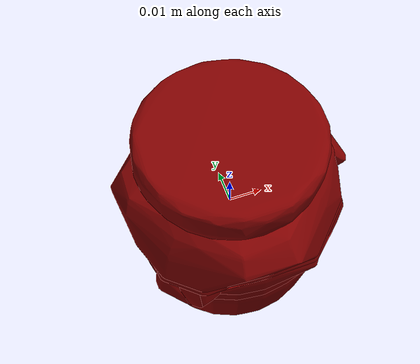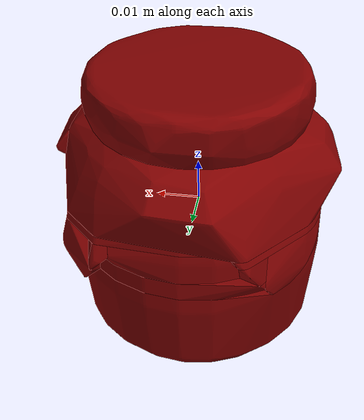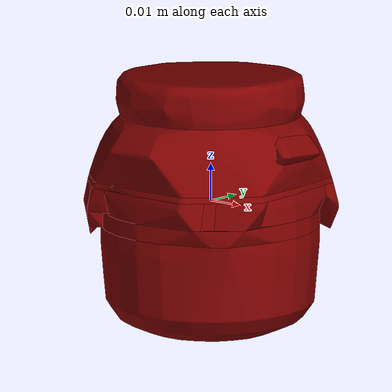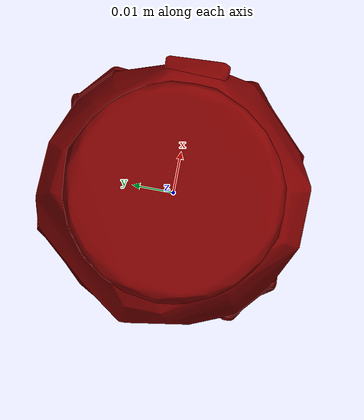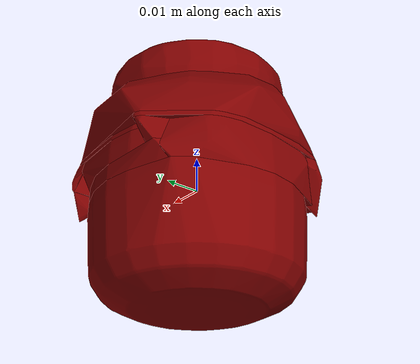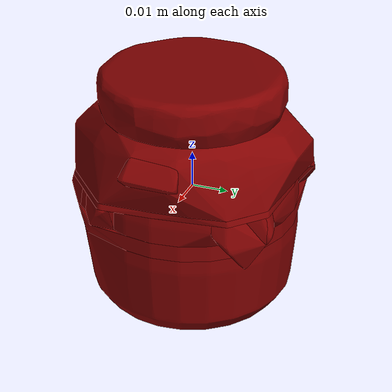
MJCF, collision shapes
<?xml version='1.0' encoding='utf-8'?>
<mujoco model="jam_0">
  <asset>
    <mesh file="visual/model_normalized_0.obj" name="model_normalized_0_vis" scale="0.06749999999999998 0.06749999999999998 0.06749999999999998" refquat="1.0 0.0 0.0 0.0" />
    <mesh file="visual/model_normalized_1.obj" name="model_normalized_1_vis" scale="0.06749999999999998 0.06749999999999998 0.06749999999999998" refquat="1.0 0.0 0.0 0.0" />
    <texture type="2d" name="image0" file="visual/image0.png" />
    <texture type="2d" name="image3" file="visual/image3.png" />
    <material name="Glass" texture="image0" specular="0.5" shininess="0.25" />
    <material name="recheio" texture="image3" specular="0.5" shininess="0.25" />
    <mesh file="collision/collision_mesh_collision_0.obj" name="jam_collision_mesh_0" scale="0.06749999999999998 0.06749999999999998 0.06749999999999998" refquat="1.0 0.0 0.0 0.0" />
    <mesh file="collision/collision_mesh_collision_1.obj" name="jam_collision_mesh_1" scale="0.06749999999999998 0.06749999999999998 0.06749999999999998" refquat="1.0 0.0 0.0 0.0" />
    <mesh file="collision/collision_mesh_collision_2.obj" name="jam_collision_mesh_2" scale="0.06749999999999998 0.06749999999999998 0.06749999999999998" refquat="1.0 0.0 0.0 0.0" />
    <mesh file="collision/collision_mesh_collision_3.obj" name="jam_collision_mesh_3" scale="0.06749999999999998 0.06749999999999998 0.06749999999999998" refquat="1.0 0.0 0.0 0.0" />
    <mesh file="collision/collision_mesh_collision_4.obj" name="jam_collision_mesh_4" scale="0.06749999999999998 0.06749999999999998 0.06749999999999998" refquat="1.0 0.0 0.0 0.0" />
    <mesh file="collision/collision_mesh_collision_5.obj" name="jam_collision_mesh_5" scale="0.06749999999999998 0.06749999999999998 0.06749999999999998" refquat="1.0 0.0 0.0 0.0" />
    <mesh file="collision/collision_mesh_collision_6.obj" name="jam_collision_mesh_6" scale="0.06749999999999998 0.06749999999999998 0.06749999999999998" refquat="1.0 0.0 0.0 0.0" />
    <mesh file="collision/collision_mesh_collision_7.obj" name="jam_collision_mesh_7" scale="0.06749999999999998 0.06749999999999998 0.06749999999999998" refquat="1.0 0.0 0.0 0.0" />
    <mesh file="collision/collision_mesh_collision_8.obj" name="jam_collision_mesh_8" scale="0.06749999999999998 0.06749999999999998 0.06749999999999998" refquat="1.0 0.0 0.0 0.0" />
    <mesh file="collision/collision_mesh_collision_9.obj" name="jam_collision_mesh_9" scale="0.06749999999999998 0.06749999999999998 0.06749999999999998" refquat="1.0 0.0 0.0 0.0" />
    <mesh file="collision/collision_mesh_collision_10.obj" name="jam_collision_mesh_10" scale="0.06749999999999998 0.06749999999999998 0.06749999999999998" refquat="1.0 0.0 0.0 0.0" />
    <mesh file="collision/collision_mesh_collision_11.obj" name="jam_collision_mesh_11" scale="0.06749999999999998 0.06749999999999998 0.06749999999999998" refquat="1.0 0.0 0.0 0.0" />
    <mesh file="collision/collision_mesh_collision_12.obj" name="jam_collision_mesh_12" scale="0.06749999999999998 0.06749999999999998 0.06749999999999998" refquat="1.0 0.0 0.0 0.0" />
    <mesh file="collision/collision_mesh_collision_13.obj" name="jam_collision_mesh_13" scale="0.06749999999999998 0.06749999999999998 0.06749999999999998" refquat="1.0 0.0 0.0 0.0" />
    <mesh file="collision/collision_mesh_collision_14.obj" name="jam_collision_mesh_14" scale="0.06749999999999998 0.06749999999999998 0.06749999999999998" refquat="1.0 0.0 0.0 0.0" />
    <mesh file="collision/collision_mesh_collision_15.obj" name="jam_collision_mesh_15" scale="0.06749999999999998 0.06749999999999998 0.06749999999999998" refquat="1.0 0.0 0.0 0.0" />
  </asset>
  <default>
    <default class="region">
      <geom group="1" conaffinity="0" contype="0" rgba="0 1 0 0" mass="0" />
    </default>
    <default class="collision">
      <geom group="0" rgba="0.5 0 0 0.5" density="1365.745945093" />
    </default>
  </default>
  <worldbody>
    <body>
      <body name="object">
        <geom solimp="0.998 0.998 0.001" solref="0.001 1" density="136.574594509" friction="0.95 0.3 0.1" type="mesh" mesh="model_normalized_0_vis" conaffinity="0" contype="0" group="1" material="Glass" />
        <geom solimp="0.998 0.998 0.001" solref="0.001 1" density="136.574594509" friction="0.95 0.3 0.1" type="mesh" mesh="model_normalized_1_vis" conaffinity="0" contype="0" group="1" material="recheio" />
        <geom class="region" name="reg_bbox" type="box" pos="-1.5024149999999992e-05 -7.179299999999983e-06 -1.5690375000003414e-06" size="0.03177777082499999 0.03117332317499999 0.0341157031875" />
        <geom mesh="jam_collision_mesh_0" type="mesh" class="collision" />
        <geom mesh="jam_collision_mesh_1" type="mesh" class="collision" />
        <geom mesh="jam_collision_mesh_2" type="mesh" class="collision" />
        <geom mesh="jam_collision_mesh_3" type="mesh" class="collision" />
        <geom mesh="jam_collision_mesh_4" type="mesh" class="collision" />
        <geom mesh="jam_collision_mesh_5" type="mesh" class="collision" />
        <geom mesh="jam_collision_mesh_6" type="mesh" class="collision" />
        <geom mesh="jam_collision_mesh_7" type="mesh" class="collision" />
        <geom mesh="jam_collision_mesh_8" type="mesh" class="collision" />
        <geom mesh="jam_collision_mesh_9" type="mesh" class="collision" />
        <geom mesh="jam_collision_mesh_10" type="mesh" class="collision" />
        <geom mesh="jam_collision_mesh_11" type="mesh" class="collision" />
        <geom mesh="jam_collision_mesh_12" type="mesh" class="collision" />
        <geom mesh="jam_collision_mesh_13" type="mesh" class="collision" />
        <geom mesh="jam_collision_mesh_14" type="mesh" class="collision" />
        <geom mesh="jam_collision_mesh_15" type="mesh" class="collision" />
      </body>
    </body>
  </worldbody>
</mujoco>
